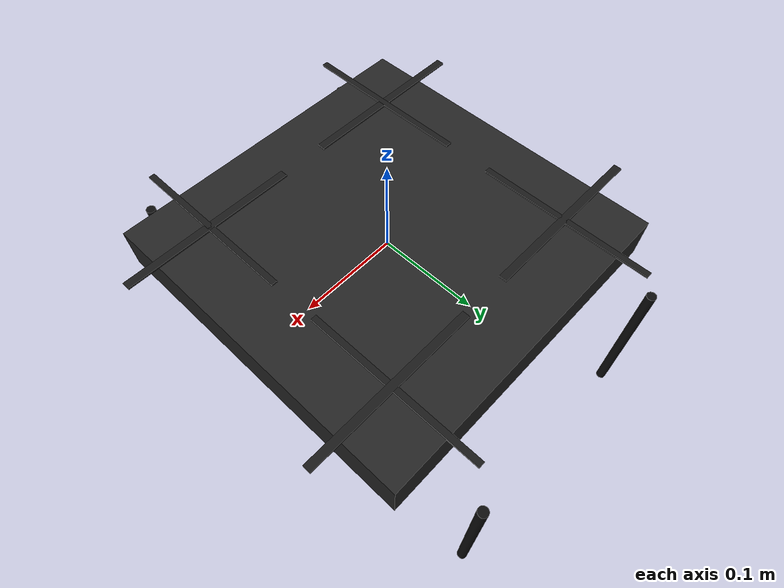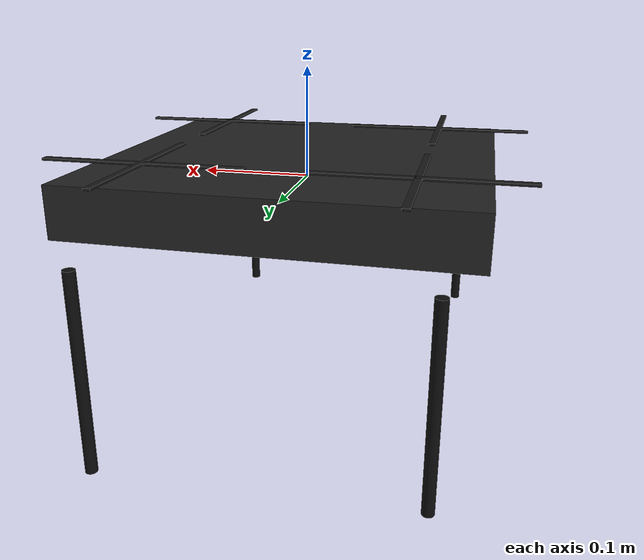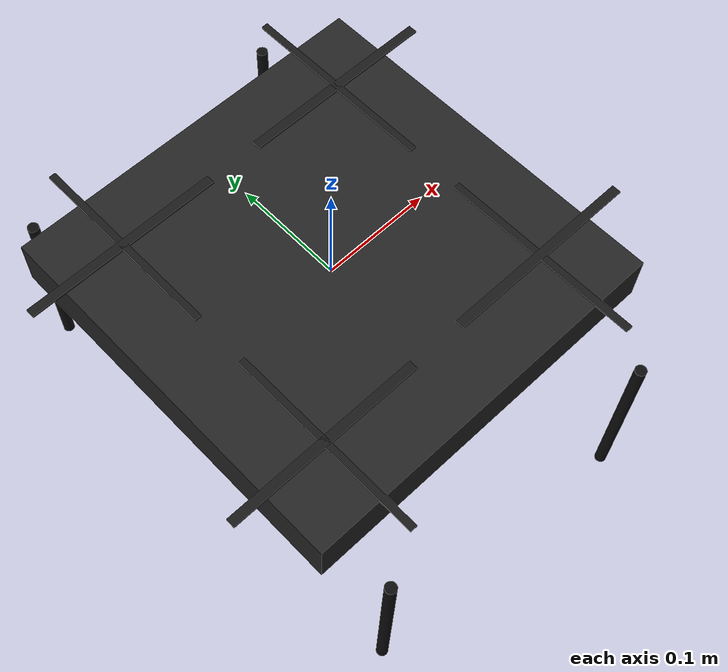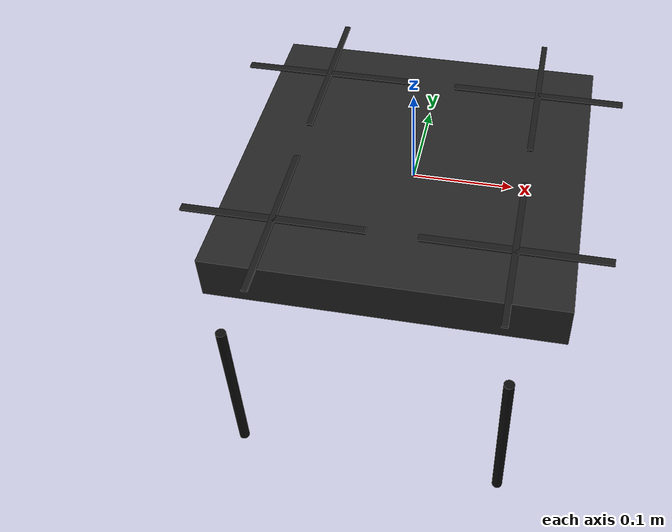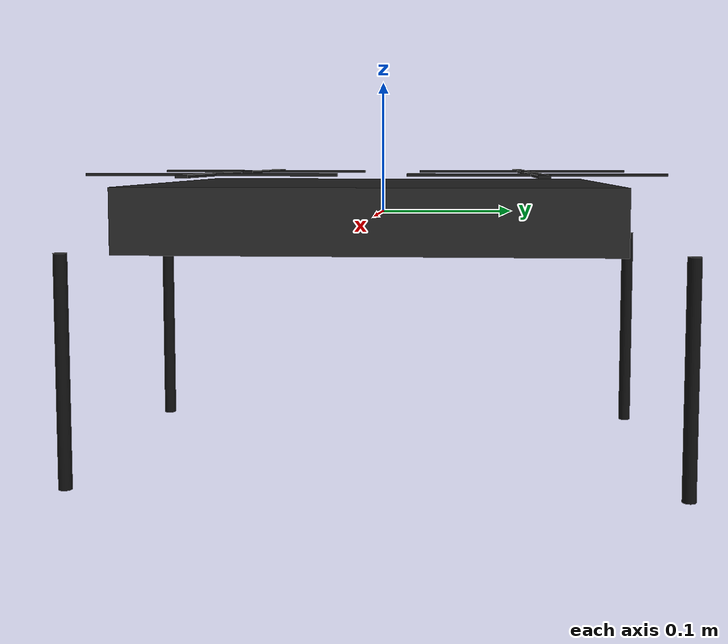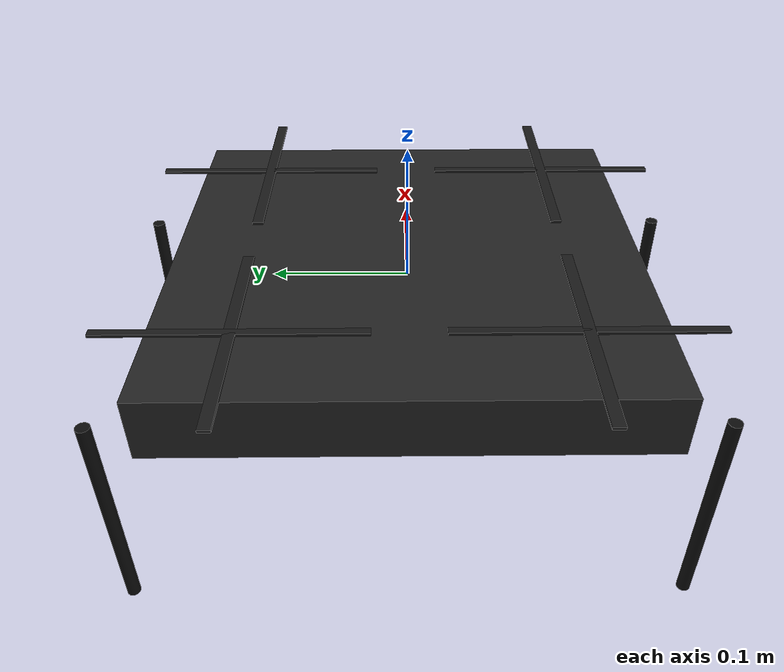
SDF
<?xml version='1.0'?>
<sdf version='1.9'>
	<model name="rescue_7inch">
  <self_collide>false</self_collide>
    <pose>0 0 0 0 0 0</pose>
    <link name='base_link'>
      <velocity_decay>
        <linear>0.0</linear>
        <angular>0.0</angular>
      </velocity_decay>
      <inertial>
        <pose>0 0 0 0 0 0</pose>
        <mass>1.35</mass>
        <inertia>
          <ixx>0.020</ixx>
          <ixy>0</ixy>
          <ixz>0</ixz>
          <iyy>0.020</iyy>
          <iyz>0</iyz>
          <izz>0.035</izz>
        </inertia>
      </inertial>
<!-- Downward RGB camera -->
      <sensor name="down_camera" type="camera">
        <pose>0 0 -0.10 0 1.5708 0</pose>
        <gz_frame_id>base_link</gz_frame_id>
        <camera>
          <horizontal_fov>1.5708</horizontal_fov>
          <image>
            <width>640</width>
            <height>480</height>
            <format>RGB_INT8</format>
          </image>
          <clip>
            <near>0.05</near>
            <far>500</far>
          </clip>
        </camera>
        <always_on>1</always_on>
        <update_rate>20</update_rate>
        <visualize>false</visualize>
      </sensor>

      <collision name='base_collision'>
        <pose>0 0 0 0 0 0</pose>
        <geometry>
          <box>
            <size>0.34 0.34 0.045</size>
          </box>
        </geometry>
        <surface>
          <contact>
            <ode>
              <max_vel>100.0</max_vel>
              <min_depth>0.001</min_depth>
            </ode>
          </contact>
          <friction>
            <ode>
              <mu>1.0</mu>
              <mu2>1.0</mu2>
            </ode>
          </friction>
        </surface>
      </collision>
      <collision name='front_left_leg_collision'>
        <pose>0.123 0.22 -0.11 0 0 0</pose>
        <geometry>
          <cylinder>
            <radius>0.005</radius>
            <length>0.17</length>
          </cylinder>
        </geometry>
        <surface>
          <contact>
            <ode>
              <max_vel>100.0</max_vel>
              <min_depth>0.001</min_depth>
            </ode>
          </contact>
          <friction>
            <ode>
              <mu>100000.0</mu>
              <mu2>100000.0</mu2>
            </ode>
          </friction>
        </surface>
      </collision>
      <collision name='front_right_leg_collision'>
        <pose>0.123 -0.22 -0.11 0 0 0</pose>
        <geometry>
          <cylinder>
            <radius>0.005</radius>
            <length>0.17</length>
          </cylinder>
        </geometry>
        <surface>
          <contact>
            <ode>
              <max_vel>100.0</max_vel>
              <min_depth>0.001</min_depth>
            </ode>
          </contact>
          <friction>
            <ode>
              <mu>100000.0</mu>
              <mu2>100000.0</mu2>
            </ode>
          </friction>
        </surface>
      </collision>
      <collision name='rear_left_leg_collision'>
        <pose>-0.140 0.21 -0.11 0 0 0</pose>
        <geometry>
          <cylinder>
            <radius>0.005</radius>
            <length>0.17</length>
          </cylinder>
        </geometry>
        <surface>
          <contact>
            <ode>
              <max_vel>100.0</max_vel>
              <min_depth>0.001</min_depth>
            </ode>
          </contact>
          <friction>
            <ode>
              <mu>100000.0</mu>
              <mu2>100000.0</mu2>
            </ode>
          </friction>
        </surface>
      </collision>
      <collision name='rear_right_leg_collision'>
        <pose>-0.140 -0.21 -0.11 0 0 0</pose>
        <geometry>
          <cylinder>
            <radius>0.005</radius>
            <length>0.17</length>
          </cylinder>
        </geometry>
        <surface>
          <contact>
            <ode>
              <max_vel>100.0</max_vel>
              <min_depth>0.001</min_depth>
            </ode>
          </contact>
          <friction>
            <ode>
              <mu>100000.0</mu>
              <mu2>100000.0</mu2>
            </ode>
          </friction>
        </surface>
      </collision>

      <visual name='base_visual'>
        <pose>0 0 0 0 0 0</pose>
        <geometry>
          <box>
            <size>0.34 0.34 0.045</size>
          </box>
        </geometry>
        <material>
          <ambient>0.08 0.08 0.08 1</ambient>
          <diffuse>0.14 0.14 0.14 1</diffuse>
          <specular>0.20 0.20 0.20 1</specular>
          <pbr>
            <metal>
              <metalness>0.35</metalness>
              <roughness>0.55</roughness>
            </metal>
          </pbr>
        </material>
      </visual>
      <visual name='front_left_leg_visual'>
        <pose>0.123 0.22 -0.11 0 0 0</pose>
        <geometry>
          <cylinder>
            <radius>0.005</radius>
            <length>0.17</length>
          </cylinder>
        </geometry>
        <material>
          <ambient>0.05 0.05 0.05</ambient>
          <diffuse>0.05 0.05 0.05</diffuse>
          <specular>0.01 0.01 0.01 1.0</specular>
          <pbr>
            <metal>
              <metalness>0.5</metalness>
              <roughness>0.5</roughness>
            </metal>
          </pbr>
        </material>
      </visual>
      <visual name='front_right_leg_visual'>
        <pose>0.123 -0.22 -0.11 0 0 0</pose>
        <geometry>
          <cylinder>
            <radius>0.005</radius>
            <length>0.17</length>
          </cylinder>
        </geometry>
        <material>
          <ambient>0.05 0.05 0.05</ambient>
          <diffuse>0.05 0.05 0.05</diffuse>
          <specular>0.01 0.01 0.01 1.0</specular>
          <pbr>
            <metal>
              <metalness>0.5</metalness>
              <roughness>0.5</roughness>
            </metal>
          </pbr>
        </material>
      </visual>
      <visual name='rear_left_leg_visual'>
        <pose>-0.140 0.21 -0.11 0 0 0</pose>
        <geometry>
          <cylinder>
            <radius>0.005</radius>
            <length>0.17</length>
          </cylinder>
        </geometry>
        <material>
          <ambient>0.05 0.05 0.05</ambient>
          <diffuse>0.05 0.05 0.05</diffuse>
          <specular>0.01 0.01 0.01 1.0</specular>
          <pbr>
            <metal>
              <metalness>0.5</metalness>
              <roughness>0.5</roughness>
            </metal>
          </pbr>
        </material>
      </visual>
      <visual name='rear_right_leg_visual'>
        <pose>-0.140 -0.21 -0.11 0 0 0</pose>
        <geometry>
          <cylinder>
            <radius>0.005</radius>
            <length>0.17</length>
          </cylinder>
        </geometry>
        <material>
          <ambient>0.05 0.05 0.05</ambient>
          <diffuse>0.05 0.05 0.05</diffuse>
          <specular>0.01 0.01 0.01 1.0</specular>
          <pbr>
            <metal>
              <metalness>0.5</metalness>
              <roughness>0.5</roughness>
            </metal>
          </pbr>
        </material>
      </visual>
    </link>
    <link name='imu_link'>
      <inertial>
        <pose>0 0 0 0 0 0</pose>
        <mass>0.010</mass>
        <inertia>
          <ixx>0.00001</ixx>
          <ixy>0</ixy>
          <ixz>0</ixz>
          <iyy>0.00002</iyy>
          <iyz>0</iyz>
          <izz>0.00002</izz>
        </inertia>
      </inertial>
      <sensor name="imu_sensor" type="imu">
        <gz_frame_id>imu_link</gz_frame_id>
        <pose degrees="true">0 0 0 180 0 0</pose>
        <always_on>1</always_on>
        <update_rate>1000.0</update_rate>
      </sensor>
    </link>
    <joint name='imu_joint' type='revolute'>
      <child>imu_link</child>
      <parent>base_link</parent>
      <axis>
        <xyz>0 0 1</xyz>
        <limit>
          <lower>0</lower>
          <upper>0</upper>
          <effort>0</effort>
          <velocity>0</velocity>
        </limit>
        <dynamics>
          <damping>1.0</damping>
        </dynamics>
      </axis>
    </joint>

  <link name='rotor_0'>
    <pose>+0.113137 -0.113137 0.030 0 0 0</pose>

    <inertial>
        <pose>0 0 0 0 0 0</pose>
        <mass>0.035</mass>
        <inertia>
          <ixx>9.75e-06</ixx>
          <ixy>0</ixy>
          <ixz>0</ixz>
          <iyy>0.000166704</iyy>
          <iyz>0</iyz>
          <izz>0.000167604</izz>
        </inertia>
      </inertial>

    <visual name='propeller_visual'>
      <pose>0 0 0 0 0 0</pose>
      <geometry>
        <box>
          <size>0.1778 0.008 0.002</size>
        </box>
      </geometry>
      <material>
        <ambient>0.05 0.05 0.05 1</ambient>
        <diffuse>0.10 0.10 0.10 1</diffuse>
        <specular>0.20 0.20 0.20 1</specular>
      </material>
    </visual>

    <visual name='propeller_visual_90deg'>
      <pose>0 0 0 0 0 1.57079632679</pose>
      <geometry>
        <box>
          <size>0.1778 0.006 0.002</size>
        </box>
      </geometry>
      <material>
        <ambient>0.05 0.05 0.05 1</ambient>
        <diffuse>0.10 0.10 0.10 1</diffuse>
        <specular>0.20 0.20 0.20 1</specular>
      </material>
    </visual>

  </link>
<joint name='rotor_0_joint' type='revolute'>
      <child>rotor_0</child>
      <parent>base_link</parent>
      <axis>
        <xyz>0 0 1</xyz>
        <limit>
          <lower>-1e+16</lower>
          <upper>1e+16</upper>
        </limit>
        <dynamics>
          <damping>0.004</damping>
        </dynamics>
      </axis>
    </joint>

  <link name='rotor_1'>
    <pose>-0.113137 +0.113137 0.030 0 0 0</pose>

    <inertial>
        <pose>0 0 0 0 0 0</pose>
        <mass>0.035</mass>
        <inertia>
          <ixx>9.75e-06</ixx>
          <ixy>0</ixy>
          <ixz>0</ixz>
          <iyy>0.000166704</iyy>
          <iyz>0</iyz>
          <izz>0.000167604</izz>
        </inertia>
      </inertial>

    <visual name='propeller_visual'>
      <pose>0 0 0 0 0 0</pose>
      <geometry>
        <box>
          <size>0.1778 0.008 0.002</size>
        </box>
      </geometry>
      <material>
        <ambient>0.05 0.05 0.05 1</ambient>
        <diffuse>0.10 0.10 0.10 1</diffuse>
        <specular>0.20 0.20 0.20 1</specular>
      </material>
    </visual>

    <visual name='propeller_visual_90deg'>
      <pose>0 0 0 0 0 1.57079632679</pose>
      <geometry>
        <box>
          <size>0.1778 0.006 0.002</size>
        </box>
      </geometry>
      <material>
        <ambient>0.05 0.05 0.05 1</ambient>
        <diffuse>0.10 0.10 0.10 1</diffuse>
        <specular>0.20 0.20 0.20 1</specular>
      </material>
    </visual>

  </link>
<joint name='rotor_1_joint' type='revolute'>
      <child>rotor_1</child>
      <parent>base_link</parent>
      <axis>
        <xyz>0 0 1</xyz>
        <limit>
          <lower>-1e+16</lower>
          <upper>1e+16</upper>
        </limit>
        <dynamics>
          <damping>0.004</damping>
        </dynamics>
      </axis>
    </joint>

  <link name='rotor_2'>
    <pose>+0.113137 +0.113137 0.030 0 0 0</pose>

    <inertial>
        <pose>0 0 0 0 0 0</pose>
        <mass>0.035</mass>
        <inertia>
          <ixx>9.75e-06</ixx>
          <ixy>0</ixy>
          <ixz>0</ixz>
          <iyy>0.000166704</iyy>
          <iyz>0</iyz>
          <izz>0.000167604</izz>
        </inertia>
      </inertial>

    <visual name='propeller_visual'>
      <pose>0 0 0 0 0 0</pose>
      <geometry>
        <box>
          <size>0.1778 0.008 0.002</size>
        </box>
      </geometry>
      <material>
        <ambient>0.05 0.05 0.05 1</ambient>
        <diffuse>0.10 0.10 0.10 1</diffuse>
        <specular>0.20 0.20 0.20 1</specular>
      </material>
    </visual>

    <visual name='propeller_visual_90deg'>
      <pose>0 0 0 0 0 1.57079632679</pose>
      <geometry>
        <box>
          <size>0.1778 0.006 0.002</size>
        </box>
      </geometry>
      <material>
        <ambient>0.05 0.05 0.05 1</ambient>
        <diffuse>0.10 0.10 0.10 1</diffuse>
        <specular>0.20 0.20 0.20 1</specular>
      </material>
    </visual>

  </link>
<joint name='rotor_2_joint' type='revolute'>
      <child>rotor_2</child>
      <parent>base_link</parent>
      <axis>
        <xyz>0 0 1</xyz>
        <limit>
          <lower>-1e+16</lower>
          <upper>1e+16</upper>
        </limit>
        <dynamics>
          <damping>0.004</damping>
        </dynamics>
      </axis>
    </joint>

  <link name='rotor_3'>
    <pose>-0.113137 -0.113137 0.030 0 0 0</pose>

    <inertial>
        <pose>0 0 0 0 0 0</pose>
        <mass>0.035</mass>
        <inertia>
          <ixx>9.75e-06</ixx>
          <ixy>0</ixy>
          <ixz>0</ixz>
          <iyy>0.000166704</iyy>
          <iyz>0</iyz>
          <izz>0.000167604</izz>
        </inertia>
      </inertial>

    <visual name='propeller_visual'>
      <pose>0 0 0 0 0 0</pose>
      <geometry>
        <box>
          <size>0.1778 0.008 0.002</size>
        </box>
      </geometry>
      <material>
        <ambient>0.05 0.05 0.05 1</ambient>
        <diffuse>0.10 0.10 0.10 1</diffuse>
        <specular>0.20 0.20 0.20 1</specular>
      </material>
    </visual>

    <visual name='propeller_visual_90deg'>
      <pose>0 0 0 0 0 1.57079632679</pose>
      <geometry>
        <box>
          <size>0.1778 0.006 0.002</size>
        </box>
      </geometry>
      <material>
        <ambient>0.05 0.05 0.05 1</ambient>
        <diffuse>0.10 0.10 0.10 1</diffuse>
        <specular>0.20 0.20 0.20 1</specular>
      </material>
    </visual>

  </link>
<joint name='rotor_3_joint' type='revolute'>
      <child>rotor_3</child>
      <parent>base_link</parent>
      <axis>
        <xyz>0 0 1</xyz>
        <limit>
          <lower>-1e+16</lower>
          <upper>1e+16</upper>
        </limit>
        <dynamics>
          <damping>0.004</damping>
        </dynamics>
      </axis>
    </joint>
  </model>
</sdf>
